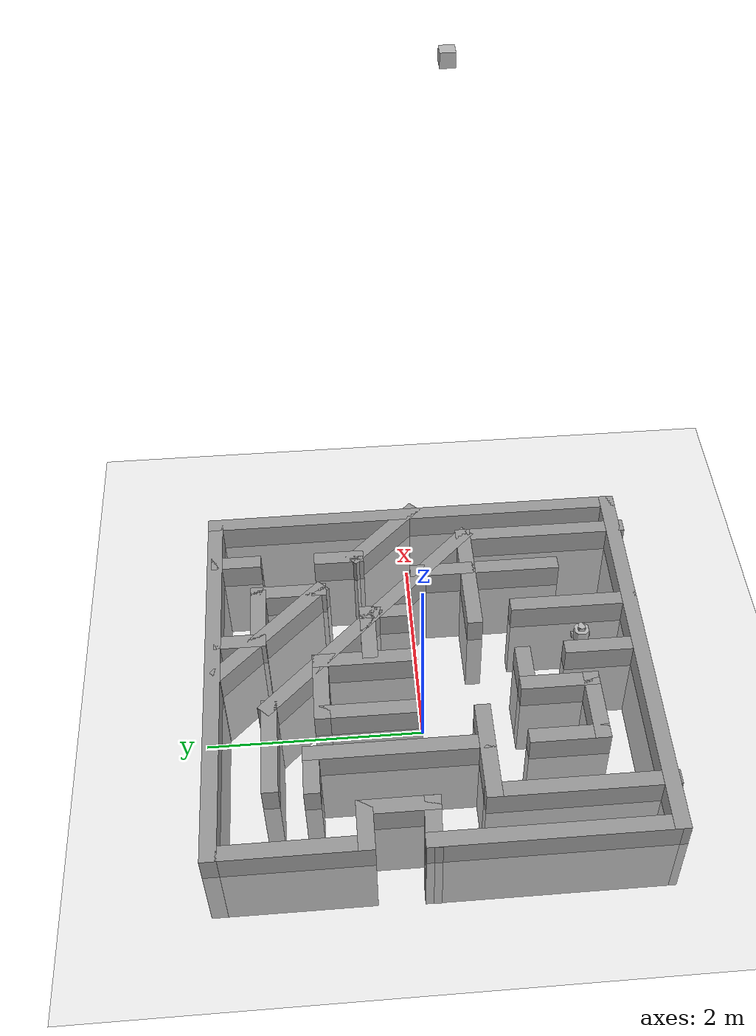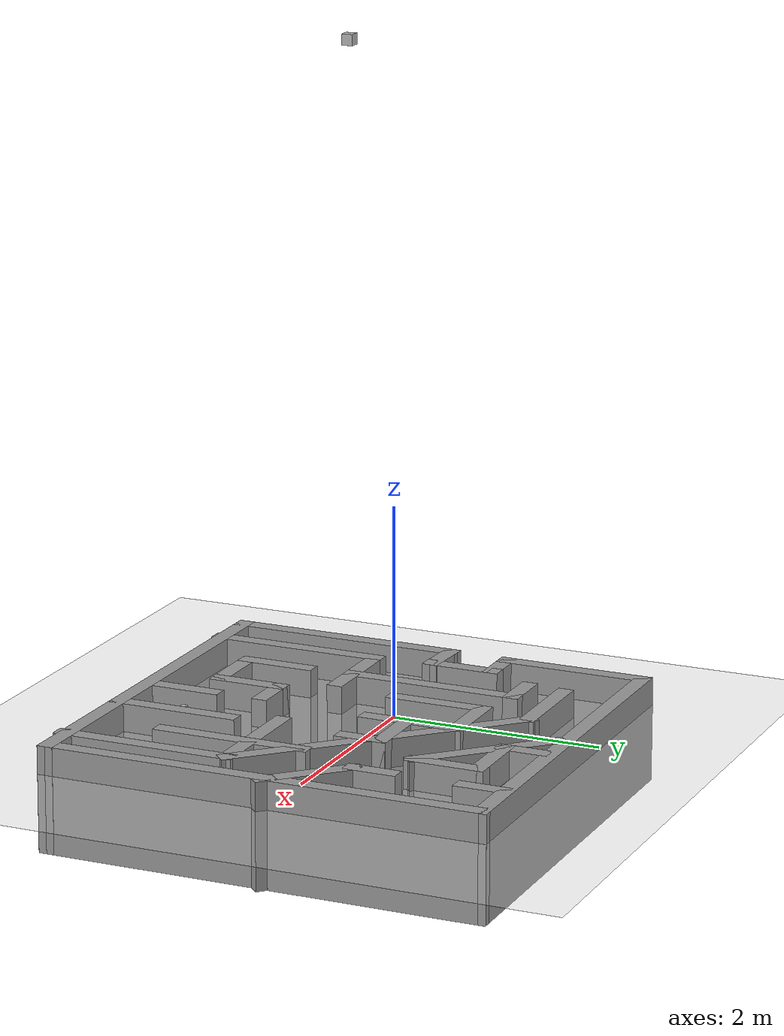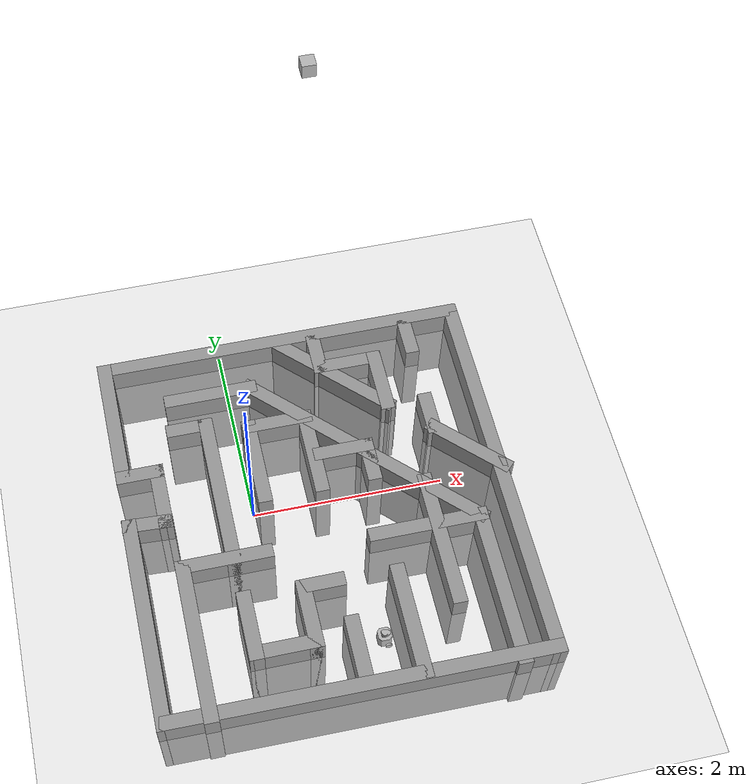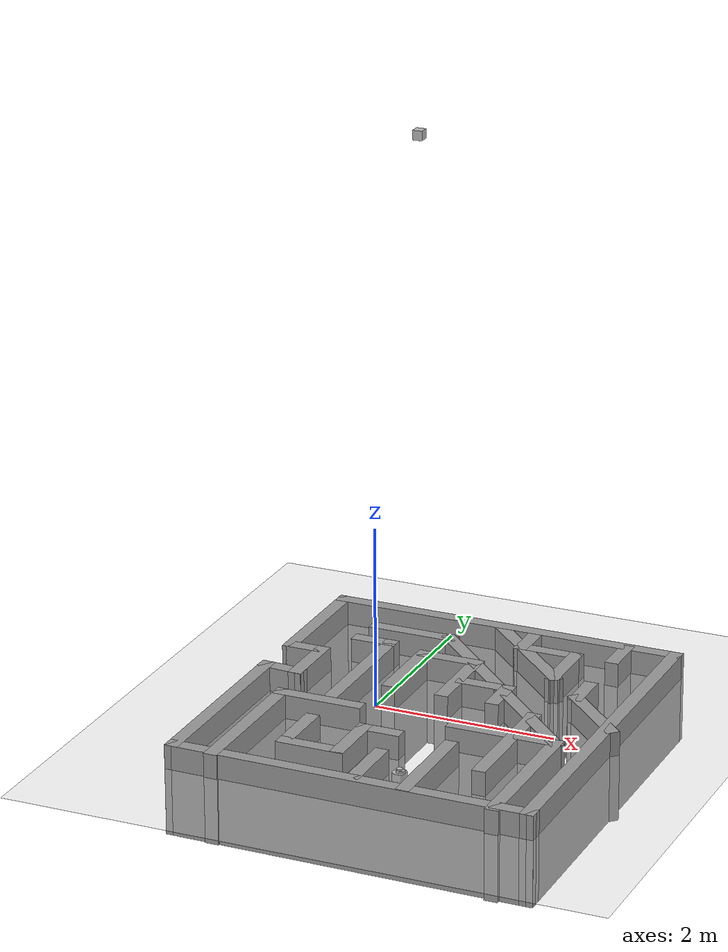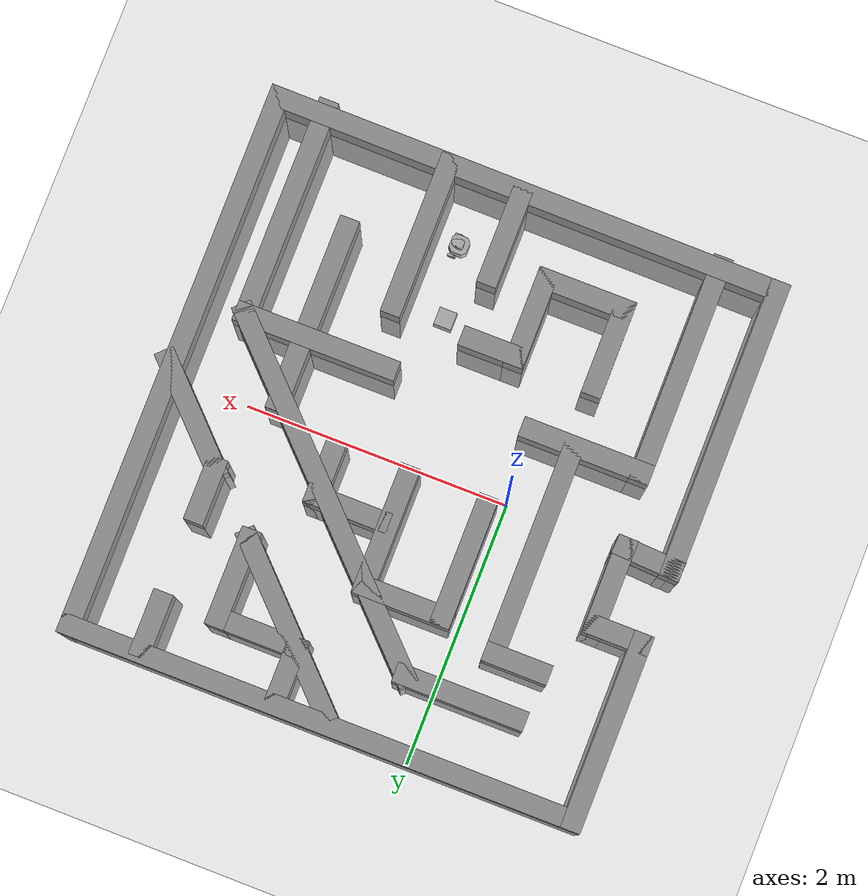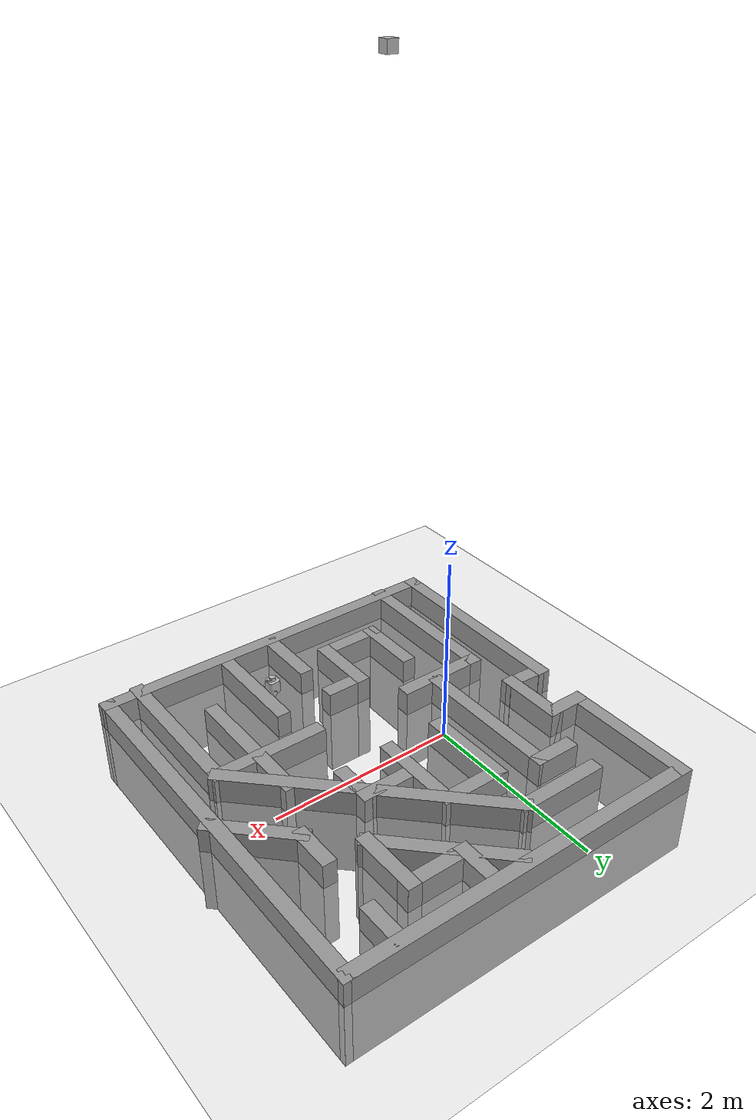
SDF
<sdf version="1.7">
 <world name="default">
  <model name="ground_plane">
   <static>1</static>
   <link name="link">
    <collision name="collision">
     <geometry><plane><normal>0 0 1</normal><size>100 100</size></plane></geometry>
     <surface>
      <contact><collide_bitmask>65535</collide_bitmask></contact>
      <friction><ode><mu>100</mu><mu2>50</mu2></ode></friction>
     </surface>
    </collision>
    <visual name="visual">
     <cast_shadows>0</cast_shadows>
     <geometry><plane><normal>0 0 1</normal><size>100 100</size></plane></geometry>
     <material>
      <script><uri>file://media/materials/scripts/gazebo.material</uri><name>Gazebo/Grey</name></script>
     </material>
    </visual>
   </link>
  </model>
  <light name="sun" type="directional">
   <pose>0 0 10 0 -0 0</pose>
   <diffuse>0.8 0.8 0.8 1</diffuse>
   <specular>0.2 0.2 0.2 1</specular>
   <attenuation>
    <range>1000</range>
    <constant>0.9</constant>
    <linear>0.01</linear>
    <quadratic>0.001</quadratic>
   </attenuation>
   <direction>-0.5 0.1 -0.9</direction>
   <spot><inner_angle>0</inner_angle><outer_angle>0</outer_angle><falloff>0</falloff></spot>
  </light>
  <scene><shadows>0</shadows><ambient>0.4 0.4 0.4 1</ambient><background>0.7 0.7 0.7 1</background></scene>
  <physics type="ode">
   <real_time_update_rate>1000</real_time_update_rate>
   <max_step_size>0.001</max_step_size>
   <real_time_factor>1</real_time_factor>
   <ode>
    <solver>
     <type>quick</type>
     <iters>150</iters>
     <precon_iters>0</precon_iters>
     <sor>1.4</sor>
     <use_dynamic_moi_rescaling>1</use_dynamic_moi_rescaling>
    </solver>
    <constraints>
     <cfm>1e-05</cfm>
     <erp>0.2</erp>
     <contact_max_correcting_vel>2000</contact_max_correcting_vel>
     <contact_surface_layer>0.01</contact_surface_layer>
    </constraints>
   </ode>
  </physics>
  <gravity>0 0 -9.8</gravity>
  <magnetic_field>6e-06 2.3e-05 -4.2e-05</magnetic_field>
  <atmosphere type="adiabatic"/>
  <audio><device>default</device></audio>
  <spherical_coordinates>
   <surface_model>EARTH_WGS84</surface_model>
   <latitude_deg>0</latitude_deg>
   <longitude_deg>0</longitude_deg>
   <elevation>0</elevation>
   <heading_deg>0</heading_deg>
  </spherical_coordinates>
  <model name="burger">
   <pose>1.02691 -1.64371 0.008529 9.9e-05 0.00573 8e-06</pose>
   <link name="base_footprint">
    <inertial>
     <inertia><ixx>1</ixx><ixy>0</ixy><ixz>0</ixz><iyy>1</iyy><iyz>0</iyz><izz>1</izz></inertia>
     <mass>1</mass>
    </inertial>
   </link>
   <link name="base_link">
    <inertial>
     <pose>-0.032 0 0.07 0 -0 0</pose>
     <inertia>
      <ixx>0.723974</ixx>
      <ixy>4.6864e-10</ixy>
      <ixz>-1.09526e-08</ixz>
      <iyy>0.723974</iyy>
      <iyz>2.85826e-09</iyz>
      <izz>0.65305</izz>
     </inertia>
     <mass>0.825735</mass>
    </inertial>
    <collision name="base_collision">
     <pose>-0.032 0 0.07 0 -0 0</pose>
     <geometry><box><size>0.14 0.14 0.14</size></box></geometry>
    </collision>
    <visual name="base_visual">
     <pose>-0.032 0 0 0 -0 0</pose>
     <geometry>
      <mesh><uri>model://turtlebot3_common/meshes/burger_base.dae</uri><scale>0.001 0.001 0.001</scale></mesh>
     </geometry>
    </visual>
   </link>
   <link name="imu_link">
    <sensor name="tb3_imu" type="imu">
     <always_on>1</always_on>
     <update_rate>200</update_rate>
     <imu>
      <angular_velocity>
       <x><noise type="gaussian"><mean>0</mean><stddev>0.0002</stddev></noise></x>
       <y><noise type="gaussian"><mean>0</mean><stddev>0.0002</stddev></noise></y>
       <z><noise type="gaussian"><mean>0</mean><stddev>0.0002</stddev></noise></z>
      </angular_velocity>
      <linear_acceleration>
       <x><noise type="gaussian"><mean>0</mean><stddev>0.017</stddev></noise></x>
       <y><noise type="gaussian"><mean>0</mean><stddev>0.017</stddev></noise></y>
       <z><noise type="gaussian"><mean>0</mean><stddev>0.017</stddev></noise></z>
      </linear_acceleration>
     </imu>
     <plugin name="turtlebot3_imu" filename="libgazebo_ros_imu_sensor.so">
      <ros><remapping>~/out:=imu</remapping></ros>
     </plugin>
    </sensor>
    <inertial>
     <inertia><ixx>1</ixx><ixy>0</ixy><ixz>0</ixz><iyy>1</iyy><iyz>0</iyz><izz>1</izz></inertia>
     <mass>1</mass>
    </inertial>
   </link>
   <link name="base_scan">
    <inertial>
     <pose>-0.02 0 0.161 0 -0 0</pose>
     <inertia><ixx>0.001</ixx><ixy>0</ixy><ixz>0</ixz><iyy>0.001</iyy><iyz>0</iyz><izz>0.001</izz></inertia>
     <mass>0.114</mass>
    </inertial>
    <collision name="lidar_sensor_collision">
     <pose>-0.02 0 0.161 0 -0 0</pose>
     <geometry><cylinder><radius>0.0508</radius><length>0.055</length></cylinder></geometry>
    </collision>
    <visual name="lidar_sensor_visual">
     <pose>-0.032 0 0.171 0 -0 0</pose>
     <geometry>
      <mesh><uri>model://turtlebot3_common/meshes/lds.dae</uri><scale>0.001 0.001 0.001</scale></mesh>
     </geometry>
    </visual>
    <sensor name="hls_lfcd_lds" type="ray">
     <always_on>1</always_on>
     <visualize>1</visualize>
     <pose>-0.032 0 0.171 0 -0 0</pose>
     <update_rate>5</update_rate>
     <ray>
      <scan>
       <horizontal>
        <samples>360</samples>
        <resolution>1</resolution>
        <min_angle>0</min_angle>
        <max_angle>6.28</max_angle>
       </horizontal>
       <vertical><samples>1</samples><min_angle>0</min_angle><max_angle>0</max_angle></vertical>
      </scan>
      <range><min>0.12</min><max>3.5</max><resolution>0.015</resolution></range>
      <noise><type>gaussian</type><mean>0</mean><stddev>0.01</stddev></noise>
     </ray>
     <plugin name="turtlebot3_laserscan" filename="libgazebo_ros_ray_sensor.so">
      <ros><remapping>~/out:=scan</remapping></ros>
      <output_type>sensor_msgs/LaserScan</output_type>
      <frame_name>base_scan</frame_name>
     </plugin>
    </sensor>
   </link>
   <link name="wheel_left_link">
    <inertial>
     <pose>0 0.08 0.023 -1.57 0 0</pose>
     <inertia>
      <ixx>0.00181582</ixx>
      <ixy>-9.3392e-12</ixy>
      <ixz>1.04909e-11</ixz>
      <iyy>0.00329221</iyy>
      <iyz>5.75694e-11</iyz>
      <izz>0.00181582</izz>
     </inertia>
     <mass>0.0284989</mass>
    </inertial>
    <collision name="wheel_left_collision">
     <pose>0 0.08 0.023 -1.57 0 0</pose>
     <geometry><cylinder><radius>0.033</radius><length>0.018</length></cylinder></geometry>
     <surface>
      <friction>
       <ode><mu>100000</mu><mu2>100000</mu2><fdir1>0 0 0</fdir1><slip1>0</slip1><slip2>0</slip2></ode>
      </friction>
      <contact>
       <ode>
        <soft_cfm>0</soft_cfm>
        <soft_erp>0.2</soft_erp>
        <kp>100000</kp>
        <kd>1</kd>
        <max_vel>0.01</max_vel>
        <min_depth>0.001</min_depth>
       </ode>
      </contact>
     </surface>
    </collision>
    <visual name="wheel_left_visual">
     <pose>0 0.08 0.023 0 -0 0</pose>
     <geometry>
      <mesh><uri>model://turtlebot3_common/meshes/tire.dae</uri><scale>0.001 0.001 0.001</scale></mesh>
     </geometry>
    </visual>
   </link>
   <link name="wheel_right_link">
    <inertial>
     <pose>0 -0.08 0.023 -1.57 0 0</pose>
     <inertia>
      <ixx>0.00181582</ixx>
      <ixy>-9.3392e-12</ixy>
      <ixz>1.04909e-11</ixz>
      <iyy>0.00329221</iyy>
      <iyz>5.75694e-11</iyz>
      <izz>0.00181582</izz>
     </inertia>
     <mass>0.0284989</mass>
    </inertial>
    <collision name="wheel_right_collision">
     <pose>0 -0.08 0.023 -1.57 0 0</pose>
     <geometry><cylinder><radius>0.033</radius><length>0.018</length></cylinder></geometry>
     <surface>
      <friction>
       <ode><mu>100000</mu><mu2>100000</mu2><fdir1>0 0 0</fdir1><slip1>0</slip1><slip2>0</slip2></ode>
      </friction>
      <contact>
       <ode>
        <soft_cfm>0</soft_cfm>
        <soft_erp>0.2</soft_erp>
        <kp>100000</kp>
        <kd>1</kd>
        <max_vel>0.01</max_vel>
        <min_depth>0.001</min_depth>
       </ode>
      </contact>
     </surface>
    </collision>
    <visual name="wheel_right_visual">
     <pose>0 -0.08 0.023 0 -0 0</pose>
     <geometry>
      <mesh><uri>model://turtlebot3_common/meshes/tire.dae</uri><scale>0.001 0.001 0.001</scale></mesh>
     </geometry>
    </visual>
   </link>
   <link name="caster_back_link">
    <pose>-0.081 0 -0.004 -1.57 0 0</pose>
    <inertial>
     <mass>0.005</mass>
     <inertia><ixx>0.001</ixx><ixy>0</ixy><ixz>0</ixz><iyy>0.001</iyy><iyz>0</iyz><izz>0.001</izz></inertia>
    </inertial>
    <collision name="collision">
     <geometry><sphere><radius>0.005</radius></sphere></geometry>
     <surface>
      <contact>
       <ode>
        <soft_cfm>0</soft_cfm>
        <soft_erp>0.2</soft_erp>
        <kp>100000</kp>
        <kd>1</kd>
        <max_vel>0.01</max_vel>
        <min_depth>0.001</min_depth>
       </ode>
      </contact>
     </surface>
    </collision>
   </link>
   <joint name="base_joint" type="fixed">
    <parent>base_footprint</parent>
    <child>base_link</child>
    <pose>0 0 0.01 0 -0 0</pose>
   </joint>
   <joint name="wheel_left_joint" type="revolute">
    <parent>base_link</parent>
    <child>wheel_left_link</child>
    <pose>0 0.08 0.023 -1.57 0 0</pose>
    <axis>
     <xyz>0 0 1</xyz>
     <limit><lower>-1e+16</lower><upper>1e+16</upper></limit>
     <dynamics><spring_reference>0</spring_reference><spring_stiffness>0</spring_stiffness></dynamics>
    </axis>
   </joint>
   <joint name="wheel_right_joint" type="revolute">
    <parent>base_link</parent>
    <child>wheel_right_link</child>
    <pose>0 -0.08 0.023 -1.57 0 0</pose>
    <axis>
     <xyz>0 0 1</xyz>
     <limit><lower>-1e+16</lower><upper>1e+16</upper></limit>
     <dynamics><spring_reference>0</spring_reference><spring_stiffness>0</spring_stiffness></dynamics>
    </axis>
   </joint>
   <joint name="caster_back_joint" type="ball"><parent>base_link</parent><child>caster_back_link</child></joint>
   <joint name="imu_joint" type="fixed">
    <parent>base_link</parent>
    <child>imu_link</child>
    <pose>-0.032 0 0.068 0 -0 0</pose>
    <axis><xyz>0 0 1</xyz><limit><lower>-1e+16</lower><upper>1e+16</upper></limit></axis>
   </joint>
   <joint name="lidar_joint" type="fixed">
    <parent>base_link</parent>
    <child>base_scan</child>
    <pose>-0.032 0 0.171 0 -0 0</pose>
    <axis><xyz>0 0 1</xyz><limit><lower>-1e+16</lower><upper>1e+16</upper></limit></axis>
   </joint>
   <plugin name="turtlebot3_diff_drive" filename="libgazebo_ros_diff_drive.so">
    <update_rate>30</update_rate>
    <left_joint>wheel_left_joint</left_joint>
    <right_joint>wheel_right_joint</right_joint>
    <wheel_separation>0.160</wheel_separation>
    <wheel_diameter>0.066</wheel_diameter>
    <max_wheel_torque>20</max_wheel_torque>
    <max_wheel_acceleration>1.0</max_wheel_acceleration>
    <command_topic>cmd_vel</command_topic>
    <publish_odom>1</publish_odom>
    <publish_odom_tf>1</publish_odom_tf>
    <publish_wheel_tf>0</publish_wheel_tf>
    <odometry_topic>odom</odometry_topic>
    <odometry_frame>odom</odometry_frame>
    <robot_base_frame>base_footprint</robot_base_frame>
   </plugin>
   <plugin name="turtlebot3_joint_state" filename="libgazebo_ros_joint_state_publisher.so">
    <ros><remapping>~/out:=joint_states</remapping></ros>
    <update_rate>30</update_rate>
    <joint_name>wheel_left_joint</joint_name>
    <joint_name>wheel_right_joint</joint_name>
   </plugin>
  </model>
  <model name="camera">
   <pose>0.579863 -0.18546 6.32055 3.14159 1.57079 3.14159</pose>
   <static>1</static>
   <link name="link">
    <inertial>
     <mass>0.1</mass>
     <inertia>
      <ixx>0.000166667</ixx>
      <iyy>0.000166667</iyy>
      <izz>0.000166667</izz>
      <ixy>0</ixy>
      <ixz>0</ixz>
      <iyz>0</iyz>
     </inertia>
    </inertial>
    <collision name="collision"><geometry><box><size>0.1 0.1 0.1</size></box></geometry></collision>
    <visual name="visual"><geometry><box><size>0.1 0.1 0.1</size></box></geometry></visual>
    <sensor name="camera" type="camera">
     <camera>
      <horizontal_fov>1.047</horizontal_fov>
      <image><width>320</width><height>240</height></image>
      <clip><near>0.1</near><far>100</far></clip>
     </camera>
     <plugin name="camera_controller" filename="libgazebo_ros_camera.so"/>
     <always_on>1</always_on>
     <update_rate>30</update_rate>
     <visualize>1</visualize>
    </sensor>
   </link>
  </model>
  <model name="mazeSWY">
   <pose>0.699615 -0.128175 -0.743142 0 -0 0</pose>
   <link name="Wall_0">
    <collision name="Wall_0_Collision">
     <geometry><box><size>4.03012 0.15 1</size></box></geometry>
     <pose>0 0 0.5 0 -0 0</pose>
    </collision>
    <visual name="Wall_0_Visual">
     <pose>0 0 0.5 0 -0 0</pose>
     <geometry><box><size>4.03012 0.15 1</size></box></geometry>
     <material>
      <script><uri>file://media/materials/scripts/gazebo.material</uri><name>Gazebo/Grey</name></script>
      <ambient>1 1 1 1</ambient>
     </material>
    </visual>
    <pose>-0.033574 -2.02259 0 0 0 -0.007732</pose>
   </link>
   <link name="Wall_11">
    <collision name="Wall_11_Collision">
     <geometry><box><size>1.75 0.15 1</size></box></geometry>
     <pose>0 0 0.5 0 -0 0</pose>
    </collision>
    <visual name="Wall_11_Visual">
     <pose>0 0 0.5 0 -0 0</pose>
     <geometry><box><size>1.75 0.15 1</size></box></geometry>
     <material>
      <script><uri>file://media/materials/scripts/gazebo.material</uri><name>Gazebo/Grey</name></script>
      <ambient>1 1 1 1</ambient>
     </material>
    </visual>
    <pose>-1.52357 -1.22759 0 0 -0 1.5708</pose>
   </link>
   <link name="Wall_2">
    <collision name="Wall_2_Collision">
     <geometry><box><size>4.26001 0.15 1</size></box></geometry>
     <pose>0 0 0.5 0 -0 0</pose>
    </collision>
    <visual name="Wall_2_Visual">
     <pose>0 0 0.5 0 -0 0</pose>
     <geometry><box><size>4.26001 0.15 1</size></box></geometry>
     <material>
      <script><uri>file://media/materials/scripts/gazebo.material</uri><name>Gazebo/Grey</name></script>
      <ambient>1 1 1 1</ambient>
     </material>
    </visual>
    <pose>1.90143 0.017409 0 0 -0 1.57323</pose>
   </link>
   <link name="Wall_205">
    <collision name="Wall_205_Collision">
     <geometry><box><size>1 0.15 1</size></box></geometry>
     <pose>0 0 0.5 0 -0 0</pose>
    </collision>
    <visual name="Wall_205_Visual">
     <pose>0 0 0.5 0 -0 0</pose>
     <geometry><box><size>1 0.15 1</size></box></geometry>
     <material>
      <script><uri>file://media/materials/scripts/gazebo.material</uri><name>Gazebo/Grey</name></script>
      <ambient>1 1 1 1</ambient>
     </material>
    </visual>
    <pose>-1.09857 -0.427591 0 0 -0 0</pose>
   </link>
   <link name="Wall_21">
    <collision name="Wall_21_Collision">
     <geometry><box><size>1.75 0.15 1</size></box></geometry>
     <pose>0 0 0.5 0 -0 0</pose>
    </collision>
    <visual name="Wall_21_Visual">
     <pose>0 0 0.5 0 -0 0</pose>
     <geometry><box><size>1.75 0.15 1</size></box></geometry>
     <material>
      <script><uri>file://media/materials/scripts/gazebo.material</uri><name>Gazebo/Grey</name></script>
      <ambient>1 1 1 1</ambient>
     </material>
    </visual>
    <pose>-1.00357 0.372409 0 0 -0 1.5708</pose>
   </link>
   <link name="Wall_22">
    <collision name="Wall_22_Collision">
     <geometry><box><size>0.5 0.15 1</size></box></geometry>
     <pose>0 0 0.5 0 -0 0</pose>
    </collision>
    <visual name="Wall_22_Visual">
     <pose>0 0 0.5 0 -0 0</pose>
     <geometry><box><size>0.5 0.15 1</size></box></geometry>
     <material>
      <script><uri>file://media/materials/scripts/gazebo.material</uri><name>Gazebo/Grey</name></script>
      <ambient>1 1 1 1</ambient>
     </material>
    </visual>
    <pose>-1.17857 1.17241 0 0 -0 3.14159</pose>
   </link>
   <link name="Wall_24">
    <collision name="Wall_24_Collision">
     <geometry><box><size>0.75 0.15 1</size></box></geometry>
     <pose>0 0 0.5 0 -0 0</pose>
    </collision>
    <visual name="Wall_24_Visual">
     <pose>0 0 0.5 0 -0 0</pose>
     <geometry><box><size>0.75 0.15 1</size></box></geometry>
     <material>
      <script><uri>file://media/materials/scripts/gazebo.material</uri><name>Gazebo/Grey</name></script>
      <ambient>1 1 1 1</ambient>
     </material>
    </visual>
    <pose>-0.983574 -1.18759 0 0 0 -1.5708</pose>
   </link>
   <link name="Wall_25">
    <collision name="Wall_25_Collision">
     <geometry><box><size>0.75 0.15 1</size></box></geometry>
     <pose>0 0 0.5 0 -0 0</pose>
    </collision>
    <visual name="Wall_25_Visual">
     <pose>0 0 0.5 0 -0 0</pose>
     <geometry><box><size>0.75 0.15 1</size></box></geometry>
     <material>
      <script><uri>file://media/materials/scripts/gazebo.material</uri><name>Gazebo/Grey</name></script>
      <ambient>1 1 1 1</ambient>
     </material>
    </visual>
    <pose>-0.683574 -1.48759 0 0 -0 0</pose>
   </link>
   <link name="Wall_26">
    <collision name="Wall_26_Collision">
     <geometry><box><size>0.75 0.15 1</size></box></geometry>
     <pose>0 0 0.5 0 -0 0</pose>
    </collision>
    <visual name="Wall_26_Visual">
     <pose>0 0 0.5 0 -0 0</pose>
     <geometry><box><size>0.75 0.15 1</size></box></geometry>
     <material>
      <script><uri>file://media/materials/scripts/gazebo.material</uri><name>Gazebo/Grey</name></script>
      <ambient>1 1 1 1</ambient>
     </material>
    </visual>
    <pose>-0.383574 -1.18759 0 0 -0 1.5708</pose>
   </link>
   <link name="Wall_27">
    <collision name="Wall_27_Collision">
     <geometry><box><size>0.5 0.15 1</size></box></geometry>
     <pose>0 0 0.5 0 -0 0</pose>
    </collision>
    <visual name="Wall_27_Visual">
     <pose>0 0 0.5 0 -0 0</pose>
     <geometry><box><size>0.5 0.15 1</size></box></geometry>
     <material>
      <script><uri>file://media/materials/scripts/gazebo.material</uri><name>Gazebo/Grey</name></script>
      <ambient>1 1 1 1</ambient>
     </material>
    </visual>
    <pose>-0.208574 -0.887591 0 0 -0 0</pose>
   </link>
   <link name="Wall_29">
    <collision name="Wall_29_Collision">
     <geometry><box><size>1 0.15 1</size></box></geometry>
     <pose>0 0 0.5 0 -0 0</pose>
    </collision>
    <visual name="Wall_29_Visual">
     <pose>0 0 0.5 0 -0 0</pose>
     <geometry><box><size>1 0.15 1</size></box></geometry>
     <material>
      <script><uri>file://media/materials/scripts/gazebo.material</uri><name>Gazebo/Grey</name></script>
      <ambient>1 1 1 1</ambient>
     </material>
    </visual>
    <pose>-0.888574 1.54241 0 0 -0 0</pose>
   </link>
   <link name="Wall_30">
    <collision name="Wall_30_Collision">
     <geometry><box><size>3 0.15 1</size></box></geometry>
     <pose>0 0 0.5 0 -0 0</pose>
    </collision>
    <visual name="Wall_30_Visual">
     <pose>0 0 0.5 0 -0 0</pose>
     <geometry><box><size>3 0.15 1</size></box></geometry>
     <material>
      <script><uri>file://media/materials/scripts/gazebo.material</uri><name>Gazebo/Grey</name></script>
      <ambient>1 1 1 1</ambient>
     </material>
    </visual>
    <pose>0.543926 0.534909 0 0 0 -0.785398</pose>
   </link>
   <link name="Wall_31">
    <collision name="Wall_31_Collision">
     <geometry><box><size>1.75 0.15 1</size></box></geometry>
     <pose>0 0 0.5 0 -0 0</pose>
    </collision>
    <visual name="Wall_31_Visual">
     <pose>0 0 0.5 0 -0 0</pose>
     <geometry><box><size>1.75 0.15 1</size></box></geometry>
     <material>
      <script><uri>file://media/materials/scripts/gazebo.material</uri><name>Gazebo/Grey</name></script>
      <ambient>1 1 1 1</ambient>
     </material>
    </visual>
    <pose>1.55143 -1.27259 0 0 0 -1.5708</pose>
   </link>
   <link name="Wall_33">
    <collision name="Wall_33_Collision">
     <geometry><box><size>0.75 0.15 1</size></box></geometry>
     <pose>0 0 0.5 0 -0 0</pose>
    </collision>
    <visual name="Wall_33_Visual">
     <pose>0 0 0.5 0 -0 0</pose>
     <geometry><box><size>0.75 0.15 1</size></box></geometry>
     <material>
      <script><uri>file://media/materials/scripts/gazebo.material</uri><name>Gazebo/Grey</name></script>
      <ambient>1 1 1 1</ambient>
     </material>
    </visual>
    <pose>-0.263574 1.05241 0 0 -0 3.14159</pose>
   </link>
   <link name="Wall_34">
    <collision name="Wall_34_Collision">
     <geometry><box><size>1 0.15 1</size></box></geometry>
     <pose>0 0 0.5 0 -0 0</pose>
    </collision>
    <visual name="Wall_34_Visual">
     <pose>0 0 0.5 0 -0 0</pose>
     <geometry><box><size>1 0.15 1</size></box></geometry>
     <material>
      <script><uri>file://media/materials/scripts/gazebo.material</uri><name>Gazebo/Grey</name></script>
      <ambient>1 1 1 1</ambient>
     </material>
    </visual>
    <pose>-0.563574 0.627409 0 0 0 -1.5708</pose>
   </link>
   <link name="Wall_36">
    <collision name="Wall_36_Collision">
     <geometry><box><size>1 0.15 1</size></box></geometry>
     <pose>0 0 0.5 0 -0 0</pose>
    </collision>
    <visual name="Wall_36_Visual">
     <pose>0 0 0.5 0 -0 0</pose>
     <geometry><box><size>1 0.15 1</size></box></geometry>
     <material>
      <script><uri>file://media/materials/scripts/gazebo.material</uri><name>Gazebo/Grey</name></script>
      <ambient>1 1 1 1</ambient>
     </material>
    </visual>
    <pose>0.036426 0.627409 0 0 0 -1.5708</pose>
   </link>
   <link name="Wall_38">
    <collision name="Wall_38_Collision">
     <geometry><box><size>0.64 0.15 1</size></box></geometry>
     <pose>0 0 0.5 0 -0 0</pose>
    </collision>
    <visual name="Wall_38_Visual">
     <pose>0 0 0.5 0 -0 0</pose>
     <geometry><box><size>0.64 0.15 1</size></box></geometry>
     <material>
      <script><uri>file://media/materials/scripts/gazebo.material</uri><name>Gazebo/Grey</name></script>
      <ambient>1 1 1 1</ambient>
     </material>
    </visual>
    <pose>0.351426 0.572409 0 0 -0 0</pose>
   </link>
   <link name="Wall_4">
    <collision name="Wall_4_Collision">
     <geometry><box><size>4 0.15 1</size></box></geometry>
     <pose>0 0 0.5 0 -0 0</pose>
    </collision>
    <visual name="Wall_4_Visual">
     <pose>0 0 0.5 0 -0 0</pose>
     <geometry><box><size>4 0.15 1</size></box></geometry>
     <material>
      <script><uri>file://media/materials/scripts/gazebo.material</uri><name>Gazebo/Grey</name></script>
      <ambient>1 1 1 1</ambient>
     </material>
    </visual>
    <pose>-0.028574 2.07241 0 0 -0 3.14159</pose>
   </link>
   <link name="Wall_42">
    <collision name="Wall_42_Collision">
     <geometry><box><size>0.5 0.15 1</size></box></geometry>
     <pose>0 0 0.5 0 -0 0</pose>
    </collision>
    <visual name="Wall_42_Visual">
     <pose>0 0 0.5 0 -0 0</pose>
     <geometry><box><size>0.5 0.15 1</size></box></geometry>
     <material>
      <script><uri>file://media/materials/scripts/gazebo.material</uri><name>Gazebo/Grey</name></script>
      <ambient>1 1 1 1</ambient>
     </material>
    </visual>
    <pose>0.596426 0.397409 0 0 0 -1.5708</pose>
   </link>
   <link name="Wall_44">
    <collision name="Wall_44_Collision">
     <geometry><box><size>1.5 0.15 1</size></box></geometry>
     <pose>0 0 0.5 0 -0 0</pose>
    </collision>
    <visual name="Wall_44_Visual">
     <pose>0 0 0.5 0 -0 0</pose>
     <geometry><box><size>1.5 0.15 1</size></box></geometry>
     <material>
      <script><uri>file://media/materials/scripts/gazebo.material</uri><name>Gazebo/Grey</name></script>
      <ambient>1 1 1 1</ambient>
     </material>
    </visual>
    <pose>1.09643 -0.642591 0 0 0 -1.5708</pose>
   </link>
   <link name="Wall_46">
    <collision name="Wall_46_Collision">
     <geometry><box><size>1.25 0.15 1</size></box></geometry>
     <pose>0 0 0.5 0 -0 0</pose>
    </collision>
    <visual name="Wall_46_Visual">
     <pose>0 0 0.5 0 -0 0</pose>
     <geometry><box><size>1.25 0.15 1</size></box></geometry>
     <material>
      <script><uri>file://media/materials/scripts/gazebo.material</uri><name>Gazebo/Grey</name></script>
      <ambient>1 1 1 1</ambient>
     </material>
    </visual>
    <pose>1.00143 -0.472591 0 0 -0 3.14159</pose>
   </link>
   <link name="Wall_48">
    <collision name="Wall_48_Collision">
     <geometry><box><size>1.25 0.15 1</size></box></geometry>
     <pose>0 0 0.5 0 -0 0</pose>
    </collision>
    <visual name="Wall_48_Visual">
     <pose>0 0 0.5 0 -0 0</pose>
     <geometry><box><size>1.25 0.15 1</size></box></geometry>
     <material>
      <script><uri>file://media/materials/scripts/gazebo.material</uri><name>Gazebo/Grey</name></script>
      <ambient>1 1 1 1</ambient>
     </material>
    </visual>
    <pose>0.576426 -1.46759 0 0 -0 1.5708</pose>
   </link>
   <link name="Wall_5">
    <collision name="Wall_5_Collision">
     <geometry><box><size>1.5 0.15 1</size></box></geometry>
     <pose>0 0 0.5 0 -0 0</pose>
    </collision>
    <visual name="Wall_5_Visual">
     <pose>0 0 0.5 0 -0 0</pose>
     <geometry><box><size>1.5 0.15 1</size></box></geometry>
     <material>
      <script><uri>file://media/materials/scripts/gazebo.material</uri><name>Gazebo/Grey</name></script>
      <ambient>1 1 1 1</ambient>
     </material>
    </visual>
    <pose>-1.95357 1.39741 0 0 0 -1.5708</pose>
   </link>
   <link name="Wall_50">
    <collision name="Wall_50_Collision">
     <geometry><box><size>0.75 0.15 1</size></box></geometry>
     <pose>0 0 0.5 0 -0 0</pose>
    </collision>
    <visual name="Wall_50_Visual">
     <pose>0 0 0.5 0 -0 0</pose>
     <geometry><box><size>0.75 0.15 1</size></box></geometry>
     <material>
      <script><uri>file://media/materials/scripts/gazebo.material</uri><name>Gazebo/Grey</name></script>
      <ambient>1 1 1 1</ambient>
     </material>
    </visual>
    <pose>0.006426 -1.66759 0 0 -0 1.5708</pose>
   </link>
   <link name="Wall_52">
    <collision name="Wall_52_Collision">
     <geometry><box><size>1 0.15 1</size></box></geometry>
     <pose>0 0 0.5 0 -0 0</pose>
    </collision>
    <visual name="Wall_52_Visual">
     <pose>0 0 0.5 0 -0 0</pose>
     <geometry><box><size>1 0.15 1</size></box></geometry>
     <material>
      <script><uri>file://media/materials/scripts/gazebo.material</uri><name>Gazebo/Grey</name></script>
      <ambient>1 1 1 1</ambient>
     </material>
    </visual>
    <pose>1.64593 0.342909 0 0 -0 2.35619</pose>
   </link>
   <link name="Wall_53">
    <collision name="Wall_53_Collision">
     <geometry><box><size>0.5 0.15 1</size></box></geometry>
     <pose>0 0 0.5 0 -0 0</pose>
    </collision>
    <visual name="Wall_53_Visual">
     <pose>0 0 0.5 0 -0 0</pose>
     <geometry><box><size>0.5 0.15 1</size></box></geometry>
     <material>
      <script><uri>file://media/materials/scripts/gazebo.material</uri><name>Gazebo/Grey</name></script>
      <ambient>1 1 1 1</ambient>
     </material>
    </visual>
    <pose>1.34543 0.818409 0 0 -0 1.5708</pose>
   </link>
   <link name="Wall_55">
    <collision name="Wall_55_Collision">
     <geometry><box><size>0.5 0.15 1</size></box></geometry>
     <pose>0 0 0.5 0 -0 0</pose>
    </collision>
    <visual name="Wall_55_Visual">
     <pose>0 0 0.5 0 -0 0</pose>
     <geometry><box><size>0.5 0.15 1</size></box></geometry>
     <material>
      <script><uri>file://media/materials/scripts/gazebo.material</uri><name>Gazebo/Grey</name></script>
      <ambient>1 1 1 1</ambient>
     </material>
    </visual>
    <pose>1.35643 1.85741 0 0 0 -1.5708</pose>
   </link>
   <link name="Wall_57">
    <collision name="Wall_57_Collision">
     <geometry><box><size>1.50057 0.15 1</size></box></geometry>
     <pose>0 0 0.5 0 -0 0</pose>
    </collision>
    <visual name="Wall_57_Visual">
     <pose>0 0 0.5 0 -0 0</pose>
     <geometry><box><size>1.50057 0.15 1</size></box></geometry>
     <material>
      <script><uri>file://media/materials/scripts/gazebo.material</uri><name>Gazebo/Grey</name></script>
      <ambient>1 1 1 1</ambient>
     </material>
    </visual>
    <pose>0.453926 1.51491 0 0 0 -0.785398</pose>
   </link>
   <link name="Wall_58">
    <collision name="Wall_58_Collision">
     <geometry><box><size>0.750406 0.15 1</size></box></geometry>
     <pose>0 0 0.5 0 -0 0</pose>
    </collision>
    <visual name="Wall_58_Visual">
     <pose>0 0 0.5 0 -0 0</pose>
     <geometry><box><size>0.750406 0.15 1</size></box></geometry>
     <material>
      <script><uri>file://media/materials/scripts/gazebo.material</uri><name>Gazebo/Grey</name></script>
      <ambient>1 1 1 1</ambient>
     </material>
    </visual>
    <pose>0.931426 1.33741 0 0 -0 1.5708</pose>
   </link>
   <link name="Wall_59">
    <collision name="Wall_59_Collision">
     <geometry><box><size>0.75 0.15 1</size></box></geometry>
     <pose>0 0 0.5 0 -0 0</pose>
    </collision>
    <visual name="Wall_59_Visual">
     <pose>0 0 0.5 0 -0 0</pose>
     <geometry><box><size>0.75 0.15 1</size></box></geometry>
     <material>
      <script><uri>file://media/materials/scripts/gazebo.material</uri><name>Gazebo/Grey</name></script>
      <ambient>1 1 1 1</ambient>
     </material>
    </visual>
    <pose>0.631426 1.63741 0 0 -0 3.14159</pose>
   </link>
   <link name="Wall_6">
    <collision name="Wall_6_Collision">
     <geometry><box><size>0.5 0.15 1</size></box></geometry>
     <pose>0 0 0.5 0 -0 0</pose>
    </collision>
    <visual name="Wall_6_Visual">
     <pose>0 0 0.5 0 -0 0</pose>
     <geometry><box><size>0.5 0.15 1</size></box></geometry>
     <material>
      <script><uri>file://media/materials/scripts/gazebo.material</uri><name>Gazebo/Grey</name></script>
      <ambient>1 1 1 1</ambient>
     </material>
    </visual>
    <pose>-1.77857 0.722409 0 0 -0 0</pose>
   </link>
   <link name="Wall_60">
    <collision name="Wall_60_Collision">
     <geometry><box><size>0.5 0.15 1</size></box></geometry>
     <pose>0 0 0.5 0 -0 0</pose>
    </collision>
    <visual name="Wall_60_Visual">
     <pose>0 0 0.5 0 -0 0</pose>
     <geometry><box><size>0.5 0.15 1</size></box></geometry>
     <material>
      <script><uri>file://media/materials/scripts/gazebo.material</uri><name>Gazebo/Grey</name></script>
      <ambient>1 1 1 1</ambient>
     </material>
    </visual>
    <pose>0.331426 1.81241 0 0 -0 1.5708</pose>
   </link>
   <link name="Wall_7">
    <collision name="Wall_7_Collision">
     <geometry><box><size>0.75 0.15 1</size></box></geometry>
     <pose>0 0 0.5 0 -0 0</pose>
    </collision>
    <visual name="Wall_7_Visual">
     <pose>0 0 0.5 0 -0 0</pose>
     <geometry><box><size>0.75 0.15 1</size></box></geometry>
     <material>
      <script><uri>file://media/materials/scripts/gazebo.material</uri><name>Gazebo/Grey</name></script>
      <ambient>1 1 1 1</ambient>
     </material>
    </visual>
    <pose>-1.60357 0.422409 0 0 0 -1.5708</pose>
   </link>
   <link name="Wall_8">
    <collision name="Wall_8_Collision">
     <geometry><box><size>0.52054 0.15 1</size></box></geometry>
     <pose>0 0 0.5 0 -0 0</pose>
    </collision>
    <visual name="Wall_8_Visual">
     <pose>0 0 0.5 0 -0 0</pose>
     <geometry><box><size>0.52054 0.15 1</size></box></geometry>
     <material>
      <script><uri>file://media/materials/scripts/gazebo.material</uri><name>Gazebo/Grey</name></script>
      <ambient>1 1 1 1</ambient>
     </material>
    </visual>
    <pose>-1.78857 0.132409 0 0 -0 3.08759</pose>
   </link>
   <link name="Wall_9">
    <collision name="Wall_9_Collision">
     <geometry><box><size>2.3 0.15 1</size></box></geometry>
     <pose>0 0 0.5 0 -0 0</pose>
    </collision>
    <visual name="Wall_9_Visual">
     <pose>0 0 0.5 0 -0 0</pose>
     <geometry><box><size>2.3 0.15 1</size></box></geometry>
     <material>
      <script><uri>file://media/materials/scripts/gazebo.material</uri><name>Gazebo/Grey</name></script>
      <ambient>1 1 1 1</ambient>
     </material>
    </visual>
    <pose>-1.97357 -0.932591 0 0 0 -1.5708</pose>
   </link>
   <static>1</static>
  </model>
 </world>
</sdf>
